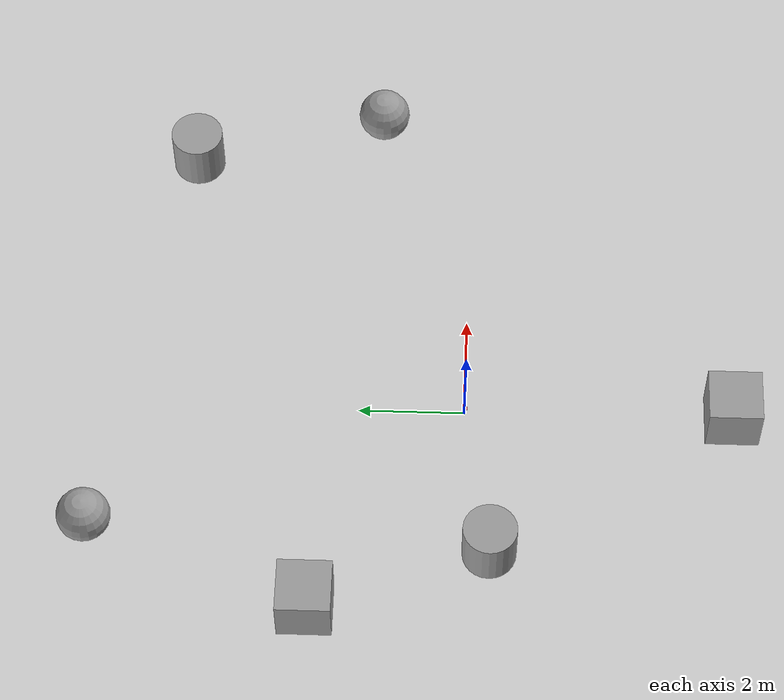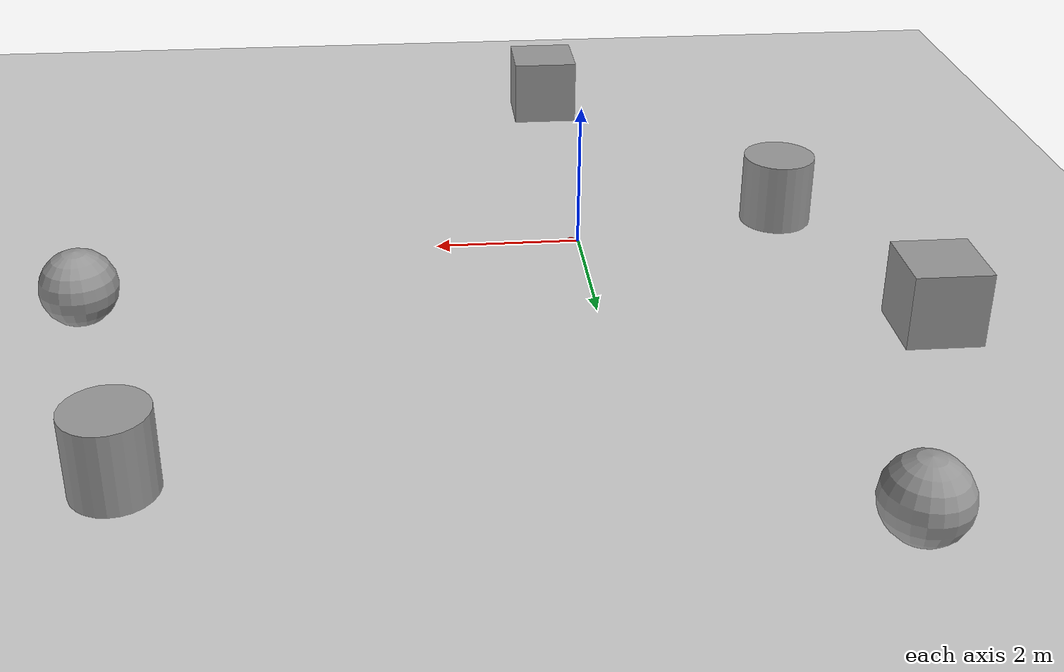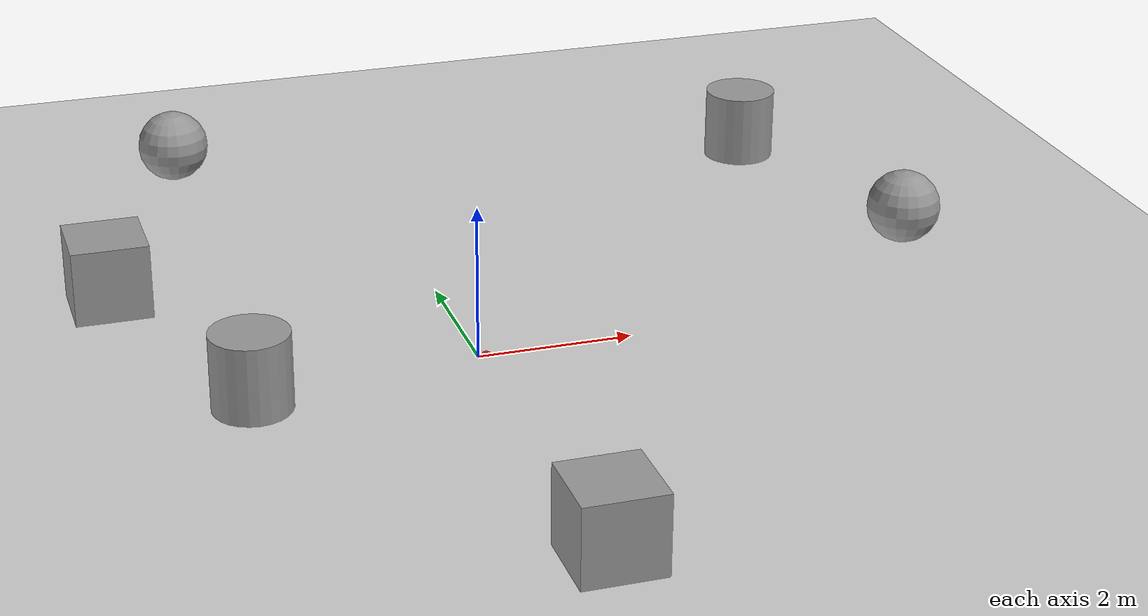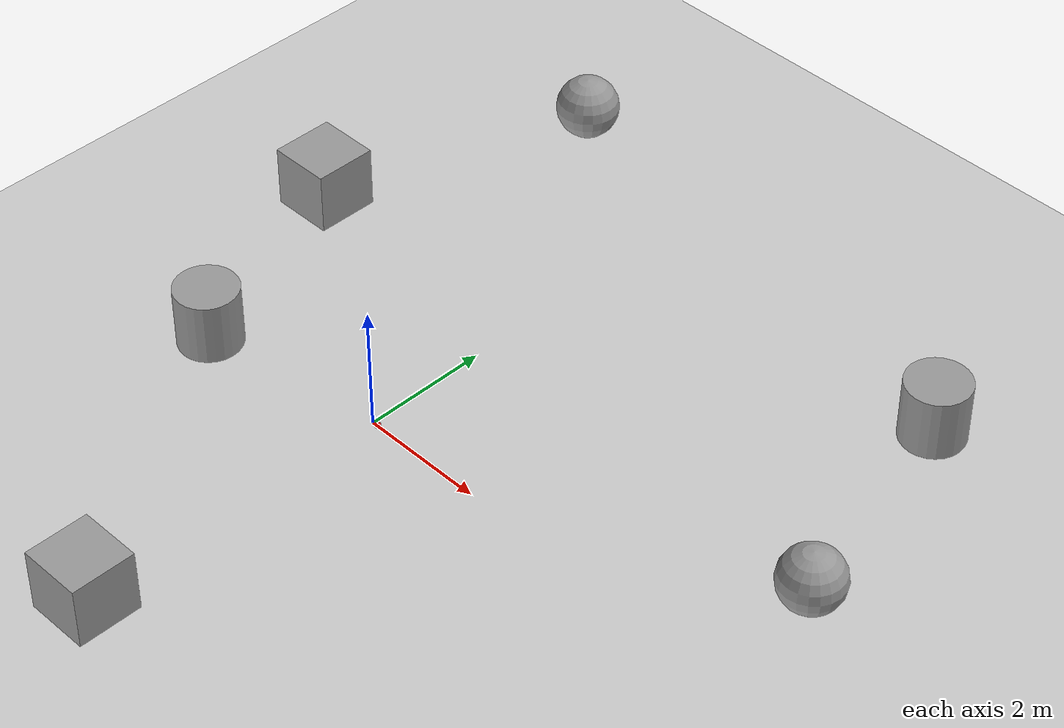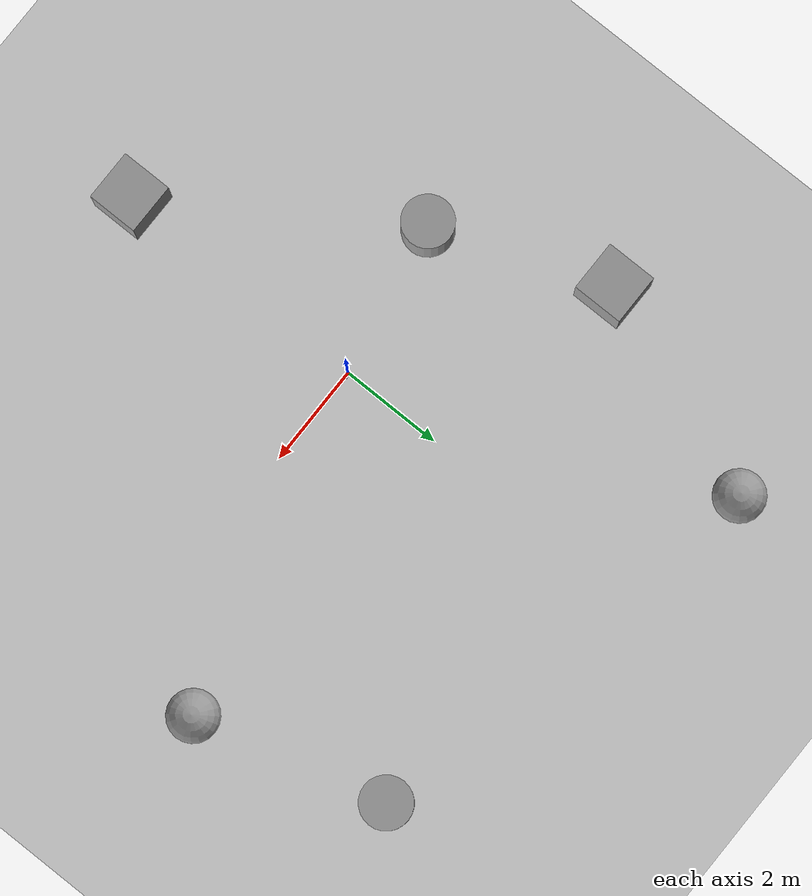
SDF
<sdf version="1.7">
 <world name="default">
  <light name="sun" type="directional">
   <pose>0 0 10 0 -0 0</pose>
   <diffuse>0.8 0.8 0.8 1</diffuse>
   <specular>0.2 0.2 0.2 1</specular>
   <attenuation>
    <range>1000</range>
    <constant>0.9</constant>
    <linear>0.01</linear>
    <quadratic>0.001</quadratic>
   </attenuation>
   <direction>-0.5 0.1 -0.9</direction>
   <spot><inner_angle>0</inner_angle><outer_angle>0</outer_angle><falloff>0</falloff></spot>
  </light>
  <model name="ground_plane">
   <static>1</static>
   <link name="link">
    <collision name="collision">
     <geometry><plane><normal>0 0 1</normal><size>100 100</size></plane></geometry>
     <surface><friction><ode><mu>100</mu><mu2>50</mu2></ode></friction></surface>
    </collision>
    <visual name="visual">
     <cast_shadows>0</cast_shadows>
     <geometry><plane><normal>0 0 1</normal><size>100 100</size></plane></geometry>
     <material>
      <script><uri>file://media/materials/scripts/gazebo.material</uri><name>Gazebo/Grey</name></script>
     </material>
    </visual>
   </link>
  </model>
  <gravity>0 0 -9.8</gravity>
  <magnetic_field>6e-06 2.3e-05 -4.2e-05</magnetic_field>
  <atmosphere type="adiabatic"/>
  <physics type="ode">
   <max_step_size>0.001</max_step_size>
   <real_time_factor>1</real_time_factor>
   <real_time_update_rate>1000</real_time_update_rate>
  </physics>
  <scene><ambient>0.4 0.4 0.4 1</ambient><background>0.7 0.7 0.7 1</background><shadows>1</shadows></scene>
  <spherical_coordinates>
   <surface_model>EARTH_WGS84</surface_model>
   <latitude_deg>0</latitude_deg>
   <longitude_deg>0</longitude_deg>
   <elevation>0</elevation>
   <heading_deg>0</heading_deg>
  </spherical_coordinates>
  <model name="unit_box">
   <pose>-4.16517 2.79702 0.499995 1e-05 -0 0</pose>
   <link name="link">
    <inertial>
     <mass>1</mass>
     <inertia>
      <ixx>0.166667</ixx>
      <ixy>0</ixy>
      <ixz>0</ixz>
      <iyy>0.166667</iyy>
      <iyz>0</iyz>
      <izz>0.166667</izz>
     </inertia>
    </inertial>
    <collision name="collision"><geometry><box><size>1 1 1</size></box></geometry></collision>
    <visual name="visual">
     <geometry><box><size>1 1 1</size></box></geometry>
     <material>
      <script><name>Gazebo/Grey</name><uri>file://media/materials/scripts/gazebo.material</uri></script>
     </material>
    </visual>
   </link>
  </model>
  <model name="unit_cylinder">
   <pose>-2.94168 -0.505076 0.499998 3e-06 4e-06 -0</pose>
   <link name="link">
    <inertial>
     <mass>1</mass>
     <inertia><ixx>0.145833</ixx><ixy>0</ixy><ixz>0</ixz><iyy>0.145833</iyy><iyz>0</iyz><izz>0.125</izz></inertia>
    </inertial>
    <collision name="collision">
     <geometry><cylinder><radius>0.5</radius><length>1</length></cylinder></geometry>
    </collision>
    <visual name="visual">
     <geometry><cylinder><radius>0.5</radius><length>1</length></cylinder></geometry>
     <material>
      <script><name>Gazebo/Grey</name><uri>file://media/materials/scripts/gazebo.material</uri></script>
     </material>
    </visual>
   </link>
  </model>
  <model name="unit_sphere">
   <pose>-2.61653 6.91822 0.5 0 -0 0</pose>
   <link name="link">
    <inertial>
     <mass>1</mass>
     <inertia><ixx>0.1</ixx><ixy>0</ixy><ixz>0</ixz><iyy>0.1</iyy><iyz>0</iyz><izz>0.1</izz></inertia>
    </inertial>
    <collision name="collision"><geometry><sphere><radius>0.5</radius></sphere></geometry></collision>
    <visual name="visual">
     <geometry><sphere><radius>0.5</radius></sphere></geometry>
     <material>
      <script><name>Gazebo/Grey</name><uri>file://media/materials/scripts/gazebo.material</uri></script>
     </material>
    </visual>
   </link>
  </model>
  <model name="unit_cylinder_0">
   <pose>5.6261 5.41616 0.499998 3e-06 -4e-06 0</pose>
   <link name="link">
    <inertial>
     <mass>1</mass>
     <inertia><ixx>0.145833</ixx><ixy>0</ixy><ixz>0</ixz><iyy>0.145833</iyy><iyz>0</iyz><izz>0.125</izz></inertia>
    </inertial>
    <collision name="collision">
     <geometry><cylinder><radius>0.5</radius><length>1</length></cylinder></geometry>
    </collision>
    <visual name="visual">
     <geometry><cylinder><radius>0.5</radius><length>1</length></cylinder></geometry>
     <material>
      <script><name>Gazebo/Grey</name><uri>file://media/materials/scripts/gazebo.material</uri></script>
     </material>
    </visual>
   </link>
  </model>
  <model name="unit_sphere_1">
   <pose>6.57401 1.75245 0.5 0 -0 0</pose>
   <link name="link">
    <inertial>
     <mass>1</mass>
     <inertia><ixx>0.1</ixx><ixy>0</ixy><ixz>0</ixz><iyy>0.1</iyy><iyz>0</iyz><izz>0.1</izz></inertia>
    </inertial>
    <collision name="collision"><geometry><sphere><radius>0.5</radius></sphere></geometry></collision>
    <visual name="visual">
     <geometry><sphere><radius>0.5</radius></sphere></geometry>
     <material>
      <script><name>Gazebo/Grey</name><uri>file://media/materials/scripts/gazebo.material</uri></script>
     </material>
    </visual>
   </link>
  </model>
  <model name="unit_box_0">
   <pose>-0.004791 -5.01502 0.499995 0 1e-05 0</pose>
   <link name="link">
    <inertial>
     <mass>1</mass>
     <inertia>
      <ixx>0.166667</ixx>
      <ixy>0</ixy>
      <ixz>0</ixz>
      <iyy>0.166667</iyy>
      <iyz>0</iyz>
      <izz>0.166667</izz>
     </inertia>
    </inertial>
    <collision name="collision"><geometry><box><size>1 1 1</size></box></geometry></collision>
    <visual name="visual">
     <geometry><box><size>1 1 1</size></box></geometry>
     <material>
      <script><name>Gazebo/Grey</name><uri>file://media/materials/scripts/gazebo.material</uri></script>
     </material>
    </visual>
   </link>
  </model>
  <model name="lidar">
   <link name="base_link">
    <inertial>
     <pose>0.1 0 0.175 0 -0 0</pose>
     <mass>0.1</mass>
     <inertia>
      <ixx>7.58333e-05</ixx>
      <ixy>0</ixy>
      <ixz>4.33681e-19</ixz>
      <iyy>7.58333e-05</iyy>
      <iyz>0</iyz>
      <izz>0.000125</izz>
     </inertia>
    </inertial>
    <collision name="base_link_fixed_joint_lump__laser_frame_collision">
     <pose>0.1 0 0.175 0 -0 0</pose>
     <geometry><cylinder><length>0.04</length><radius>0.05</radius></cylinder></geometry>
    </collision>
    <visual name="base_link_fixed_joint_lump__laser_frame_visual">
     <pose>0.1 0 0.175 0 -0 0</pose>
     <geometry><cylinder><length>0.04</length><radius>0.05</radius></cylinder></geometry>
     <material>
      <script><name>Gazebo/Red</name><uri>file://media/materials/scripts/gazebo.material</uri></script>
     </material>
    </visual>
    <sensor name="laser" type="ray">
     <visualize>1</visualize>
     <update_rate>10</update_rate>
     <ray>
      <scan>
       <horizontal>
        <samples>360</samples>
        <min_angle>0</min_angle>
        <max_angle>6.28319</max_angle>
        <resolution>1</resolution>
       </horizontal>
       <vertical><samples>1</samples><min_angle>0</min_angle><max_angle>0</max_angle></vertical>
      </scan>
      <range><min>0.12</min><max>12</max><resolution>0.015</resolution></range>
      <noise><type>gaussian</type><mean>0</mean><stddev>0.01</stddev></noise>
     </ray>
     <plugin name="laser_controller" filename="libgazebo_ros_laser.so">
      <topicName>scan</topicName>
      <frameName>laser_frame</frameName>
      <robotNamespace>/</robotNamespace>
     </plugin>
     <pose>0.1 0 0.175 0 -0 0</pose>
    </sensor>
   </link>
   <frame name="laser_joint" attached_to="base_link"><pose>0.1 0 0.175 0 -0 0</pose></frame>
   <frame name="laser_frame" attached_to="laser_joint"/>
   <pose>5e-06 -5e-06 -0.155 0 -0 4e-06</pose>
  </model>
 </world>
</sdf>
